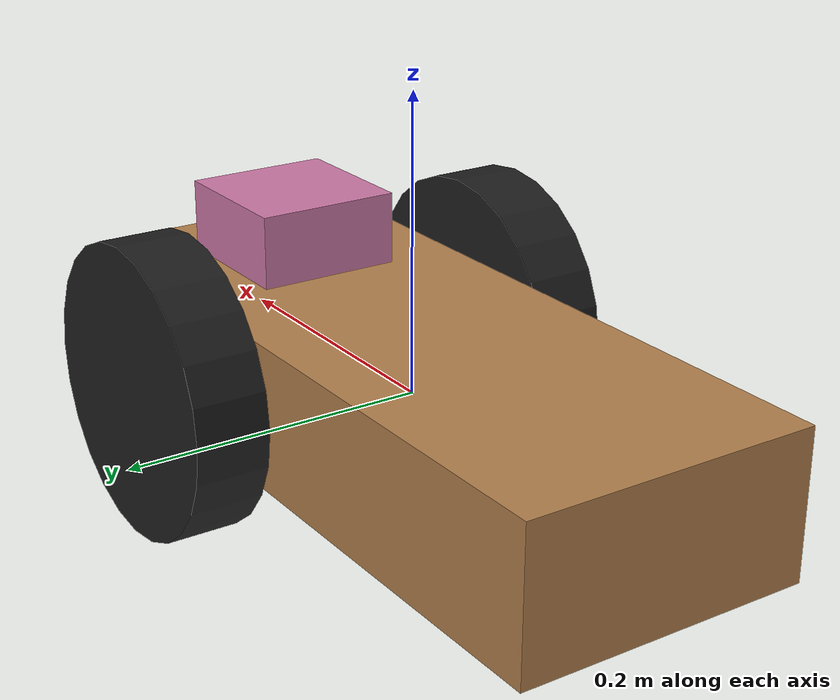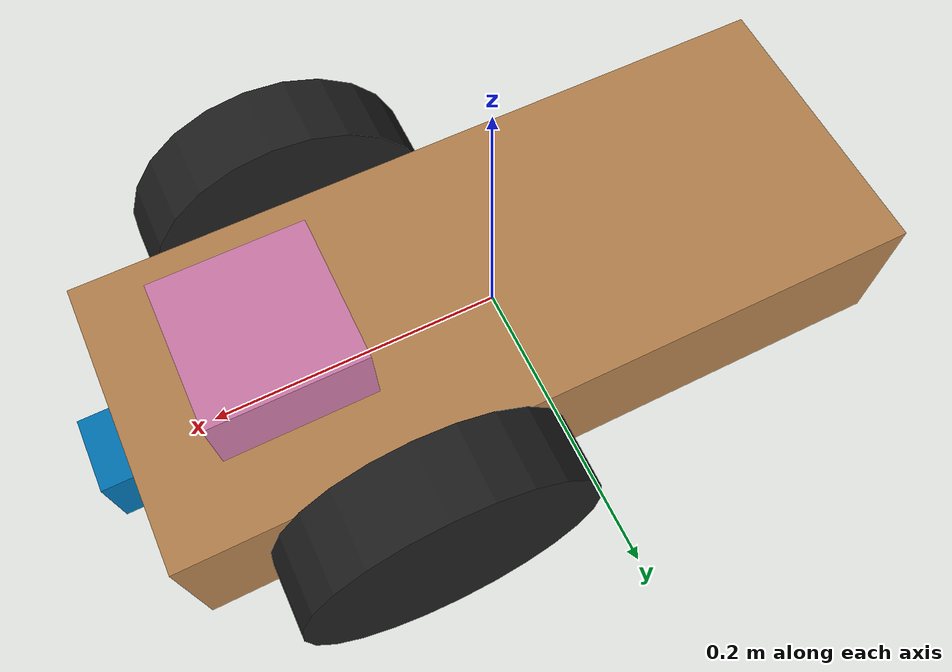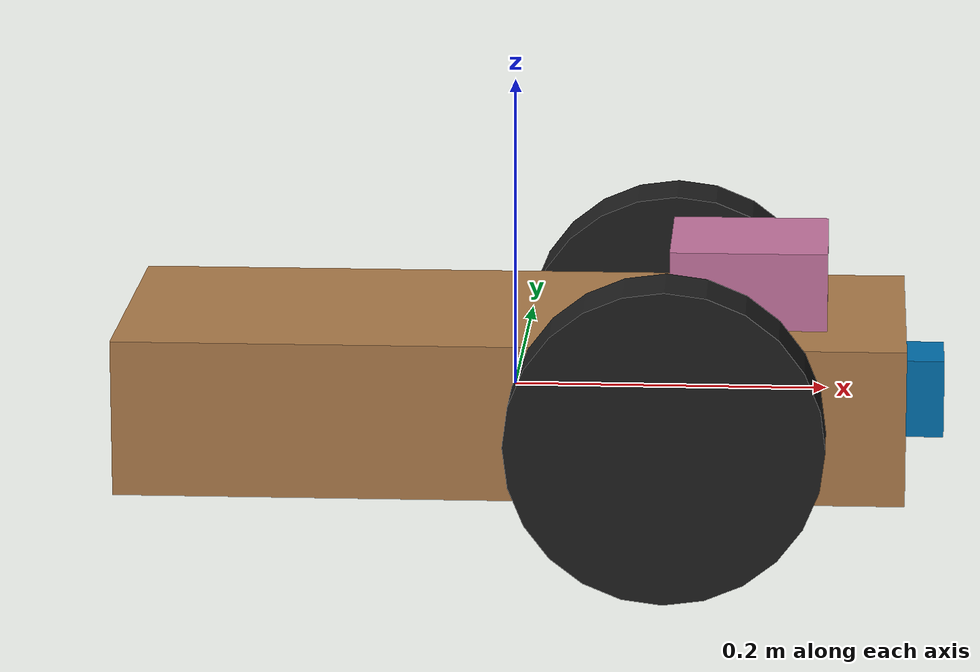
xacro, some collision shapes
<?xml version='1.0'?>
<robot name="my_robot" xmlns:xacro="http://www.ros.org/wiki/xacro">
	<xacro:include filename="$(find my_robot)/urdf/my_robot.gazebo"/>
	<link name="robot_footprint"/>
	<joint name="robot_footprint_joint" type="fixed">
		<origin xyz="0 0 0" rpy="0 0 0"/>
		<parent link="robot_footprint"/>
		<child link="chassis"/>
	</joint>
	<link name='chassis'>
		<pose>0 0 0 0 0 0</pose>
		<inertial>
			<mass value="15.0"/>
			<origin xyz="0.0 0 0" rpy=" 0 0 0"/>
			<inertia ixx="0.1" ixy="0" ixz="0" iyy="0.1" iyz="0" izz="0.1"/>
		</inertial>
		<collision name='collision'>
			<origin xyz="0 0 0" rpy=" 0 0 0"/>
			<geometry>
				<box size=".5 .2 .1"/>
			</geometry>
		</collision>
		<visual name='chassis_visual'>
			<origin xyz="0 0 0" rpy=" 0 -0 0"/>
			<geometry>
				<box size=".5 .2 .1"/>
			</geometry>
		</visual>
		<collision name='back_caster_collision'>
			<origin xyz="-0.15 0 0.0" rpy=" 0 0 0"/>
			<geometry>
				<sphere radius="0.05"/>
			</geometry>
			<surface>
				<friction>
					<ode>
						<mu>1</mu>
						<mu2>1</mu2>
					</ode>
				</friction>
			</surface>
		</collision>
		<visual name='back_caster_visual'>
			<origin xyz="-0.15 0 0.0" rpy=" 0 0 0"/>
			<geometry>
				<sphere radius="0.05"/>
			</geometry>
		</visual>
	</link>
	<gazebo reference="chassis">
   		<material>Gazebo/Wood</material>
	</gazebo>
	<link name='left_wheel'>
		<inertial>
			<mass value="10"/>
			<origin xyz="0.0 0 0" rpy=" 0 1.5707 1.5707"/>
			<inertia ixx="0.1" ixy="0" ixz="0" iyy="0.1" iyz="0" izz="0.1"/>
		</inertial>
		<collision name='left_wheel_collision'>
			<origin xyz="0.0 0 0" rpy=" 0 1.5707 1.5707"/>
			<geometry>
				<cylinder radius="0.1" length="0.05"/>
			</geometry>
			<surface>
				<friction>
					<ode>
						<mu>10</mu>
						<mu2>10</mu2>
					</ode>
				</friction>
			</surface>
		</collision>
		<visual name='left_wheel_visual'>
			<origin xyz="0.0 0 0" rpy=" 0 1.5707 1.5707"/>
			<geometry>
				<cylinder radius="0.1" length="0.05"/>
			</geometry>
		</visual>
	</link>
	<gazebo reference="left_wheel">
   		<material>Gazebo/FlatBlack</material>
	</gazebo>
	<joint type="continuous" name="left_wheel_hinge">
		<origin xyz="0.1 0.13 0" rpy="0 0 0"/>
		<child link="left_wheel"/>
		<parent link="chassis"/>
		<axis xyz="0 1 0" rpy="0 0 0"/>
		<limit effort="10000" velocity="1000"/>
		<dynamics damping="1.0" friction="1.0"/>
	</joint>
	<link name='right_wheel'>
		<inertial>
			<mass value="10"/>
			<origin xyz="0.0 0 0" rpy=" 0 1.5707 1.5707"/>
			<inertia ixx="0.1" ixy="0" ixz="0" iyy="0.1" iyz="0" izz="0.1"/>
		</inertial>
		<collision name='right_wheel_collision'>
			<origin xyz="0.0 0 0" rpy=" 0 1.5707 1.5707"/>
			<geometry>
				<cylinder radius="0.1" length="0.05"/>
			</geometry>
			<surface>
				<friction>
					<ode>
						<mu>10</mu>
						<mu2>10</mu2>
					</ode>
				</friction>
			</surface>
		</collision>
		<visual name='right_wheel_visual'>
			<origin xyz="0.0 0 0" rpy=" 0 1.5707 1.5707"/>
			<geometry>
				<cylinder radius="0.1" length="0.05"/>
			</geometry>
		</visual>
	</link>
	<gazebo reference="right_wheel">
   		<material>Gazebo/FlatBlack</material>
	</gazebo>
	<joint type="continuous" name="right_wheel_hinge">
		<origin xyz="0.1 -0.13 0" rpy="0 0 0"/>
		<child link="right_wheel"/>
		<parent link="chassis"/>
		<axis xyz="0 1 0" rpy="0 0 0"/>
		<limit effort="10000" velocity="1000"/>
		<dynamics damping="1.0" friction="1.0"/>
	</joint>
	<!-- Camera and Lidar -->
	<link name='camera'>
		<inertial>
			<mass value="0.1"/>
			<origin xyz="0.0 0 0" rpy=" 0 0 0"/>
			<inertia ixx="1e-6" ixy="0" ixz="0" iyy="1e-6" iyz="0" izz="1e-6"/>
		</inertial>
		<collision name='camera_collision'>
			<origin xyz="0.0 0 0" rpy=" 0 0 0"/>
			<geometry>
				<box size="0.05 0.05 0.05"/>
			</geometry>
		</collision>
		<visual name='camera_visual'>
			<origin xyz="0.0 0 0" rpy=" 0 0 0"/>
			<geometry>
				<box size="0.05 0.05 0.05"/>
			</geometry>
		</visual>
		<box_inertia x="0.05" y="0.05" z="0.05" m="0.1">
			<origin xyz="0 0 0" rpy="0 0 0"/>
		</box_inertia>
	</link>
	<joint type="fixed" name="camera_joint">
		<origin xyz="0.25 0 0.0" rpy="0 0 0"/>
		<child link="camera"/>
		<parent link="chassis"/>
		<axis xyz="0 1 0" rpy="0 0 0"/>
	</joint>
	 <joint name="camera_optical_joint" type="fixed">
    <origin xyz="0 0 0" rpy="-1.5707 0 -1.5707"/>
    <parent link="camera"/>
    <child link="camera_link_optical"/>
  </joint>
  <link name="camera_link_optical">
  </link>
	<link name='hokuyo'>
		<inertial>
			<mass value="1e-5"/>
			<origin xyz="0.0 0 0" rpy=" 0 0 0"/>
			<inertia ixx="1e-6" ixy="0" ixz="0" iyy="1e-6" iyz="0" izz="1e-6"/>
		</inertial>
		<collision name='lidar_collision'>
			<origin xyz="0.0 0 0" rpy=" 0 0 0"/>
			<geometry>
				<box size="0.1 0.1 0.1"/>
			</geometry>
		</collision>
		<visual name='lidar_visual'>
			<origin xyz="0.0 0 0" rpy=" 0 0 0"/>
			<geometry>
				<mesh filename="package://my_robot/meshes/hokuyo.dae"/>
			</geometry>
		</visual>
	</link>
	<joint type="fixed" name="hokuyo_joint">
		<origin xyz="0.15 0 0.05" rpy="0 0 0"/>
		<child link="hokuyo"/>
		<parent link="chassis"/>
		<axis xyz="0 1 0" rpy="0 0 0"/>
	</joint>
</robot>
